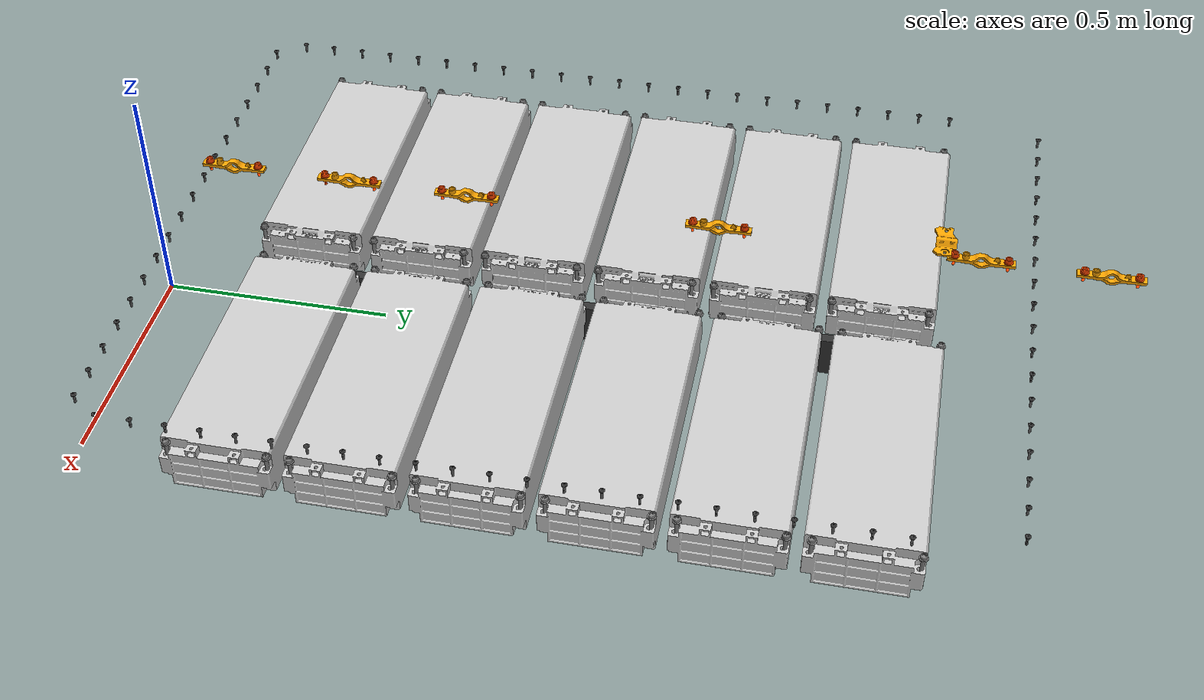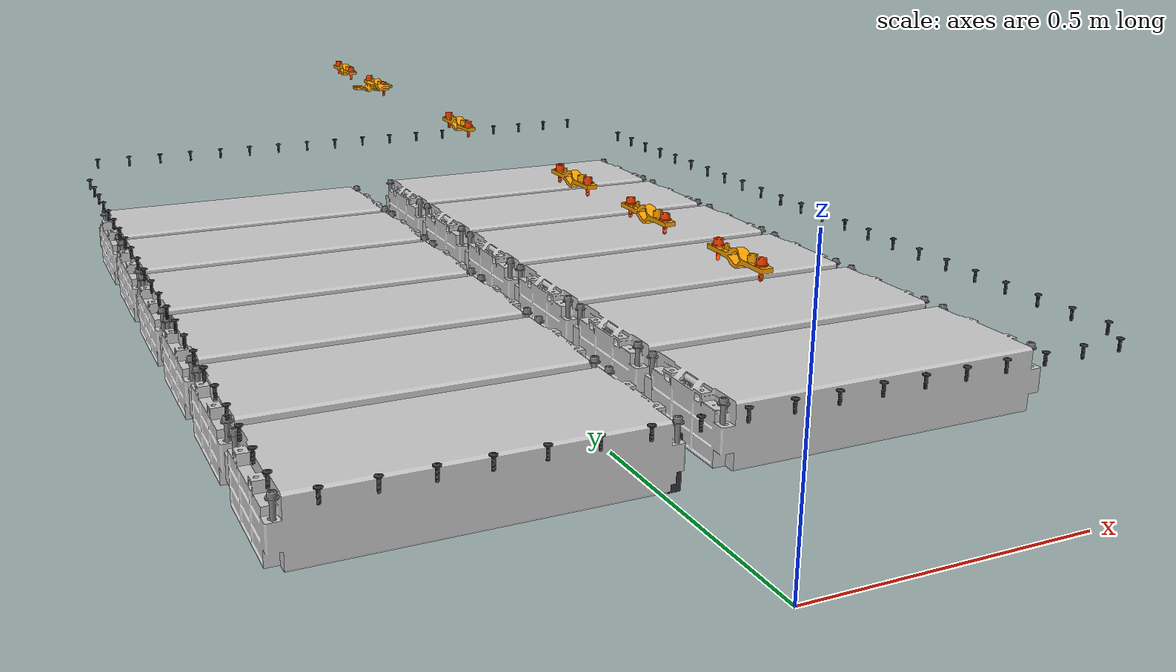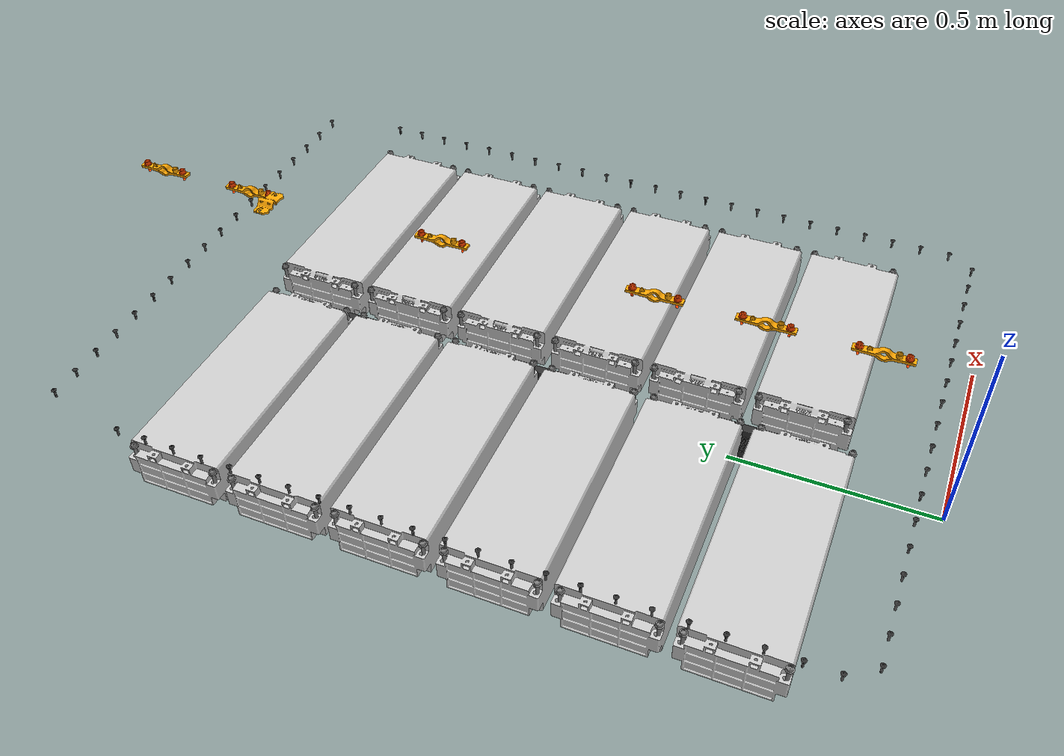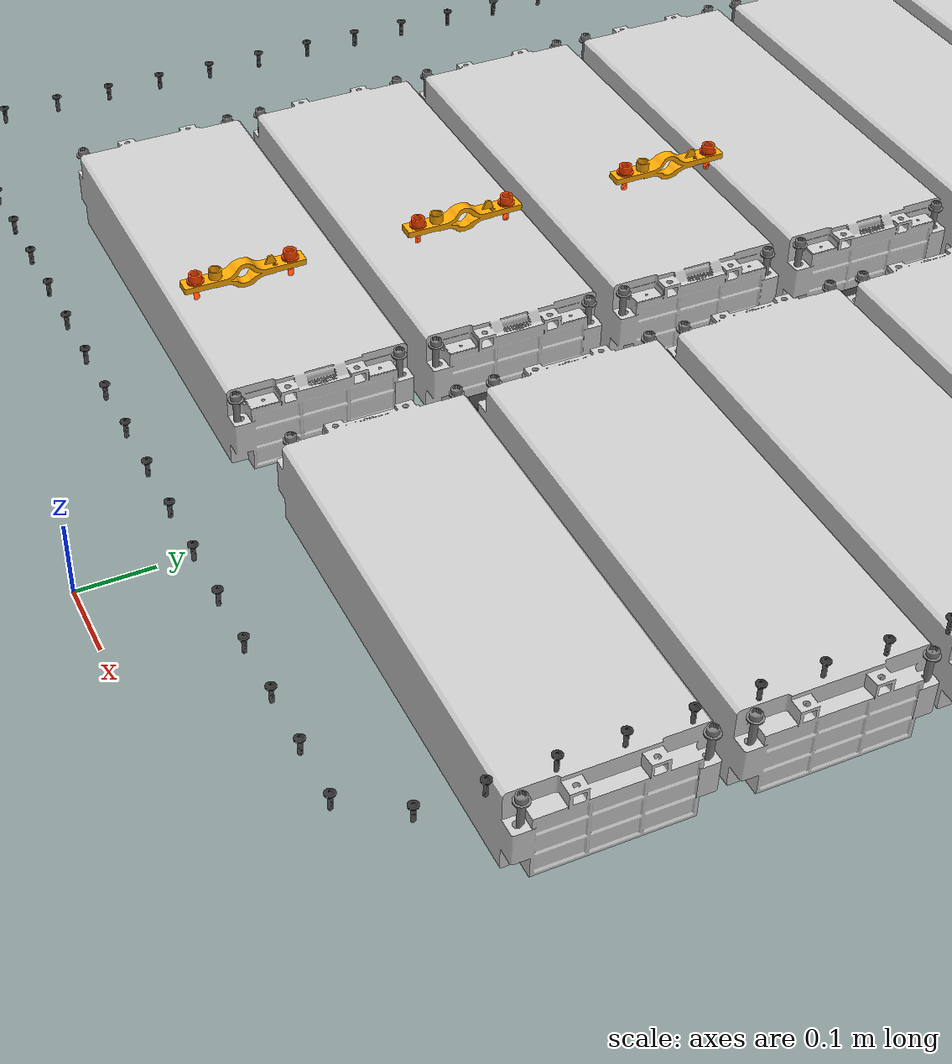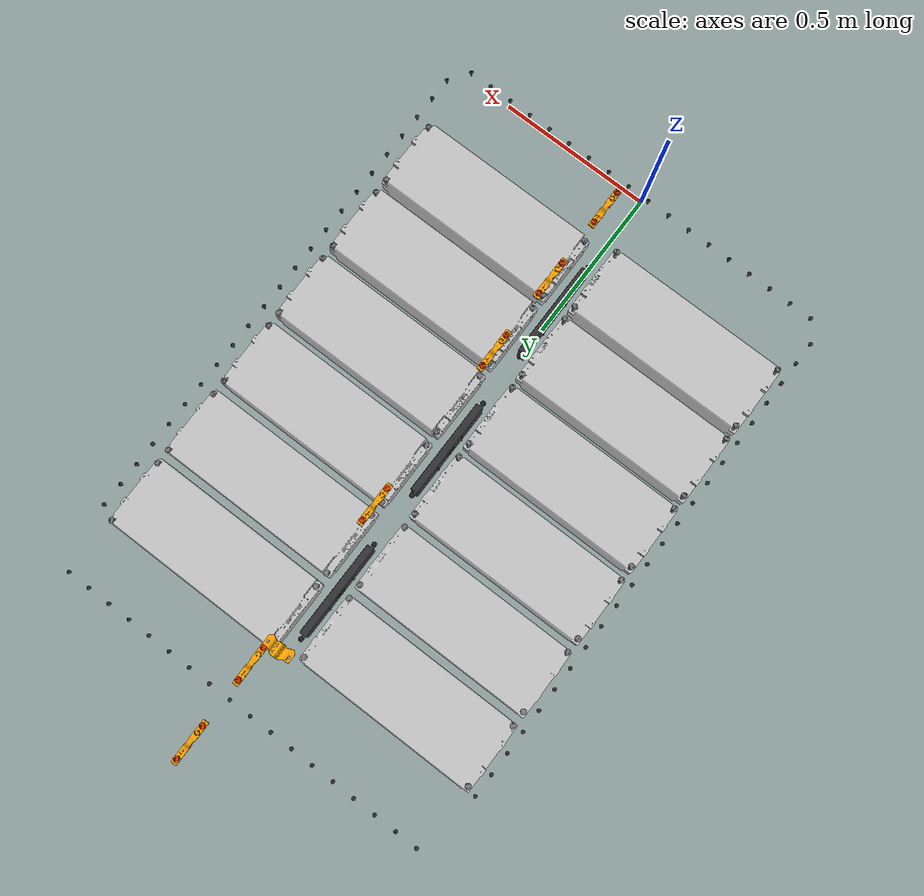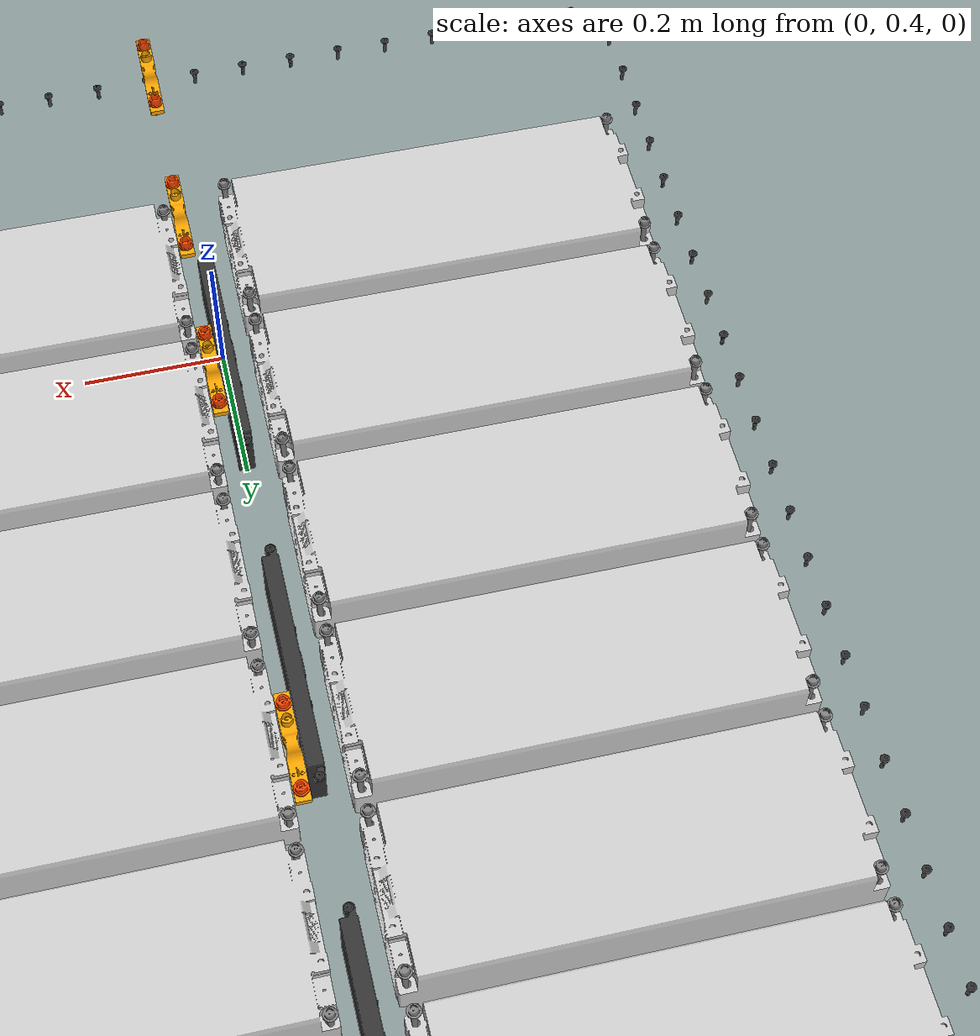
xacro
<?xml version="1.0"?>
<robot xmlns:xacro="http://wiki.ros.org/xacro" name="scene">

  <xacro:include filename="$(find id4_batterypack_description)/urdf/materials.xacro"/>
  <xacro:include filename="$(find id4_batterypack_description)/urdf/module_with_screws.xacro"/>
  <xacro:include filename="$(find id4_batterypack_description)/urdf/busbar_type1.xacro"/>

  <link name="world"/>

  <!-- ================= GLOBAL PARAMETERS ================= -->

  <!-- Module base pose (row A) -->
  <xacro:property name="module_world_x" value="0.0351"/>
  <xacro:property name="module_world_y" value="0.2395"/>
  <xacro:property name="module_world_z" value="0.071"/>
  <xacro:property name="module_pitch"   value="0.249"/>

  <!-- Mirror row (row B): shift in Y 0.202 -->
  <xacro:property name="module_mirror_y" value="0.202"/>

  <!-- BMS base pose -->
  <xacro:property name="bms_world_x" value="-0.003"/>
  <xacro:property name="bms_world_y" value="0.290"/>
  <xacro:property name="bms_world_z" value="0.097"/>
  <xacro:property name="bms_pitch"   value="0.509"/>

  <!-- ================= MACROS ================= -->

  <!-- Generic lens screw (used for BMS + top cover patterns) -->
  <xacro:macro name="screw_lens" params="name parent xyz rpy">
    <link name="${name}">
      <visual>
        <geometry>
          <mesh filename="package://id4_batterypack_description/meshes/lens_flange_m5x25.stl" scale="0.001 0.001 0.001"/>
        </geometry>
        <origin xyz="0 0 0" rpy="0 0 0"/>
        <material name="black"/>
      </visual>
      <collision>
        <geometry>
          <mesh filename="package://id4_batterypack_description/meshes/lens_flange_m5x25.stl" scale="0.001 0.001 0.001"/>
        </geometry>
        <origin xyz="0 0 0" rpy="0 0 0"/>
      </collision>
    </link>

    <joint name="${name}_joint" type="fixed">
      <parent link="${parent}"/>
      <child link="${name}"/>
      <origin xyz="${xyz}" rpy="${rpy}"/>
    </joint>
  </xacro:macro>

  <!-- Screw for BMS (reuse lens screw, fixed rpy=0) -->
  <xacro:macro name="screw_bms" params="name parent xyz">
    <xacro:screw_lens name="${name}" parent="${parent}" xyz="${xyz}" rpy="0 0 0"/>
  </xacro:macro>

  <!-- One BMS instance -->
  <xacro:macro name="bms_instance" params="prefix idx world_x world_y world_z">
    <link name="${prefix}bms_${idx}">
      <visual>
        <geometry>
          <mesh filename="package://id4_batterypack_description/meshes/bms.stl" scale="0.001 0.001 0.001"/>
        </geometry>
        <origin xyz="0 0 0" rpy="0 0 0"/>
        <material name="black"/>
      </visual>
      <collision>
        <geometry>
          <mesh filename="package://id4_batterypack_description/meshes/bms.stl" scale="0.001 0.001 0.001"/>
        </geometry>
        <origin xyz="0 0 0" rpy="0 0 0"/>
      </collision>
    </link>

    <joint name="world_to_${prefix}bms_${idx}" type="fixed">
      <parent link="world"/>
      <child link="${prefix}bms_${idx}"/>
      <origin xyz="${world_x} ${world_y} ${world_z}" rpy="0 0 0"/>
    </joint>

    <xacro:screw_bms name="${prefix}bms_${idx}_s1" parent="${prefix}bms_${idx}" xyz="0 0 0.01"/>
    <xacro:screw_bms name="${prefix}bms_${idx}_s2" parent="${prefix}bms_${idx}" xyz="0 0.334 0.01"/>
  </xacro:macro>

  <!-- ================= PATTERN MACROS ================= -->

  <!-- Row along X: i = 0..n-1 at (x0 + i*dx, y0, z0) -->
  <xacro:macro name="screw_row_x_rec" params="prefix parent i n x0 y0 z0 dx rpy">
    <xacro:if value="${i &lt; n}">
      <xacro:screw_lens name="${prefix}${i}" parent="${parent}"
                        xyz="${x0 + i*dx} ${y0} ${z0}" rpy="${rpy}"/>
      <xacro:screw_row_x_rec prefix="${prefix}" parent="${parent}"
                             i="${i + 1}" n="${n}"
                             x0="${x0}" y0="${y0}" z0="${z0}" dx="${dx}" rpy="${rpy}"/>
    </xacro:if>
  </xacro:macro>

  <xacro:macro name="screw_row_x" params="prefix parent n x0 y0 z0 dx rpy">
    <xacro:screw_row_x_rec prefix="${prefix}" parent="${parent}"
                           i="0" n="${n}" x0="${x0}" y0="${y0}" z0="${z0}" dx="${dx}" rpy="${rpy}"/>
  </xacro:macro>

  <!-- Column along Y: i = 0..n-1 at (x0, y0 + i*dy, z0) -->
  <xacro:macro name="screw_col_y_rec" params="prefix parent i n x0 y0 z0 dy rpy">
    <xacro:if value="${i &lt; n}">
      <xacro:screw_lens name="${prefix}${i}" parent="${parent}"
                        xyz="${x0} ${y0 + i*dy} ${z0}" rpy="${rpy}"/>
      <xacro:screw_col_y_rec prefix="${prefix}" parent="${parent}"
                             i="${i + 1}" n="${n}"
                             x0="${x0}" y0="${y0}" z0="${z0}" dy="${dy}" rpy="${rpy}"/>
    </xacro:if>
  </xacro:macro>

  <xacro:macro name="screw_col_y" params="prefix parent n x0 y0 z0 dy rpy">
    <xacro:screw_col_y_rec prefix="${prefix}" parent="${parent}"
                           i="0" n="${n}" x0="${x0}" y0="${y0}" z0="${z0}" dy="${dy}" rpy="${rpy}"/>
  </xacro:macro>

  <!-- ================= INSTANCES ================= -->
  <xacro:busbar_1_with_screws
    name="busbar1_0"
    parent="world"
    xyz="0.0341 0.216 0.4"
    rpy="0 0 0"/>

  <xacro:busbar_1_with_screws
    name="busbar1_1"
    parent="world"
    xyz="0.0341 ${0.216+0.249} 0.4"
    rpy="0 0 0"/>

  <xacro:busbar_1_with_screws
    name="busbar1_2"
    parent="world"
    xyz="0.0341 ${0.216+2*0.249} 0.4"
    rpy="0 0 0"/>

  <xacro:busbar_1_with_screws
    name="busbar1_3"
    parent="world"
    xyz="0.0341 ${0.216+3*0.249+0.269} 0.4"
    rpy="0 0 0"/>

  <xacro:busbar_1_with_screws
    name="busbar1_4"
    parent="world"
    xyz="0.0341 ${0.216+3*0.249+0.269*2+0.249} 0.4"
    rpy="0 0 0"/>

  <xacro:busbar_1_with_screws
    name="busbar1_5"
    parent="world"
    xyz="0.0341 ${0.216+3*0.249+0.269*2+0.249*2} 0.4"
    rpy="0 0 0"/>

  <!-- 6 modules - row A -->
  <xacro:module_instance prefix="" idx="0"
    world_x="${ module_world_x }"
    world_y="${ module_world_y + 0*module_pitch }"
    world_z="${ module_world_z }"
    world_rpy="0 0 0"/>
  <xacro:module_instance prefix="" idx="1"
    world_x="${ module_world_x }"
    world_y="${ module_world_y + 1*module_pitch }"
    world_z="${ module_world_z }"
    world_rpy="0 0 0"/>
  <xacro:module_instance prefix="" idx="2"
    world_x="${ module_world_x }"
    world_y="${ module_world_y + 2*module_pitch }"
    world_z="${ module_world_z }"
    world_rpy="0 0 0"/>
  <xacro:module_instance prefix="" idx="3"
    world_x="${ module_world_x }"
    world_y="${ module_world_y + 3*module_pitch }"
    world_z="${ module_world_z }"
    world_rpy="0 0 0"/>
  <xacro:module_instance prefix="" idx="4"
    world_x="${ module_world_x }"
    world_y="${ module_world_y + 4*module_pitch }"
    world_z="${ module_world_z }"
    world_rpy="0 0 0"/>
  <xacro:module_instance prefix="" idx="5"
    world_x="${ module_world_x }"
    world_y="${ module_world_y + 5*module_pitch }"
    world_z="${ module_world_z }"
    world_rpy="0 0 0"/>

  <!-- 6 modules - row B (mirrored): x flipped, yaw=pi (xacro provides ${pi}), y shifted -->
  <xacro:module_instance prefix="mir_" idx="0"
    world_x="${ -module_world_x }"
    world_y="${ module_world_y + module_mirror_y + 0*module_pitch }"
    world_z="${ module_world_z }"
    world_rpy="0 0 ${pi}"/>
  <xacro:module_instance prefix="mir_" idx="1"
    world_x="${ -module_world_x }"
    world_y="${ module_world_y + module_mirror_y + 1*module_pitch }"
    world_z="${ module_world_z }"
    world_rpy="0 0 ${pi}"/>
  <xacro:module_instance prefix="mir_" idx="2"
    world_x="${ -module_world_x }"
    world_y="${ module_world_y + module_mirror_y + 2*module_pitch }"
    world_z="${ module_world_z }"
    world_rpy="0 0 ${pi}"/>
  <xacro:module_instance prefix="mir_" idx="3"
    world_x="${ -module_world_x }"
    world_y="${ module_world_y + module_mirror_y + 3*module_pitch }"
    world_z="${ module_world_z }"
    world_rpy="0 0 ${pi}"/>
  <xacro:module_instance prefix="mir_" idx="4"
    world_x="${ -module_world_x }"
    world_y="${ module_world_y + module_mirror_y + 4*module_pitch }"
    world_z="${ module_world_z }"
    world_rpy="0 0 ${pi}"/>
  <xacro:module_instance prefix="mir_" idx="5"
    world_x="${ -module_world_x }"
    world_y="${ module_world_y + module_mirror_y + 5*module_pitch }"
    world_z="${ module_world_z }"
    world_rpy="0 0 ${pi}"/>

  <!-- 3 BMS -->
  <xacro:bms_instance prefix="" idx="0"
    world_x="${ bms_world_x }"
    world_y="${ bms_world_y + 0*bms_pitch }"
    world_z="${ bms_world_z }"/>
  <xacro:bms_instance prefix="" idx="1"
    world_x="${ bms_world_x }"
    world_y="${ bms_world_y + 1*bms_pitch }"
    world_z="${ bms_world_z }"/>
  <xacro:bms_instance prefix="" idx="2"
    world_x="${ bms_world_x }"
    world_y="${ bms_world_y + 2*bms_pitch }"
    world_z="${ bms_world_z }"/>

  <!-- ===== Top cover screws pattern 1: 18 along -X, plus a single copy in +Y (1.8m) ===== -->
  <xacro:screw_row_x prefix="row0_screw_" parent="world"
    n="18" x0="0.595" y0="0.074" z0="0.25" dx="-0.070" rpy="0 0 0"/>

  <xacro:screw_row_x prefix="row1_screw_" parent="world"
    n="18" x0="0.595" y0="${0.074 + 1.8}" z0="0.25" dx="-0.070" rpy="0 0 0"/>

  <!-- ===== Top cover screws pattern 2: 27 along +Y, plus a single mirrored copy in -X by (-0.637*2) ===== -->
  <xacro:screw_col_y prefix="col0_" parent="world"
    n="23" x0="0.637" y0="0.1345" z0="0.25" dy="0.070" rpy="0 0 0"/>

  <xacro:screw_col_y prefix="col1_" parent="world"
    n="23" x0="${0.637 + (-0.637*2)}" y0="0.1345" z0="0.25" dy="0.070" rpy="0 0 0"/>

   <link name="busbar_type3">
      <visual>
        <geometry>
          <mesh filename="package://id4_batterypack_description/meshes/busbar_3.stl" scale="0.001 0.001 0.001"/>
        </geometry>
        <origin xyz="0 0 0" rpy="0 0 0"/>
        <material name="orange"/>
      </visual>
      <collision>
        <geometry>
          <mesh filename="package://id4_batterypack_description/meshes/busbar_3.stl" scale="0.001 0.001 0.001"/>
        </geometry>
        <origin xyz="0 0 0" rpy="0 0 0"/>
      </collision>
    </link>

    <joint name="world_to_busbar_3" type="fixed">
      <parent link="world"/>
      <child link="busbar_type3"/>
      <origin xyz="0 1.7005 0.4" rpy="0 0 ${pi}"/>
    </joint>
</robot>

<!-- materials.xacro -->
<robot xmlns:xacro="http://wiki.ros.org/xacro">

  <material name="black">
     <color rgba="0.2 0.2 0.2 1"/>
  </material>

  <material name="gray">
     <color rgba="0.5 0.5 0.5 1"/>
  </material>

  <material name="light_gray">
    <color rgba="0.8 0.8 0.8 1"/>
  </material>

  <material name="orange">
     <color rgba="1 0.65 0 1"/>
  </material>

  <material name="dark_orange">
    <color rgba="${255/255} ${69/255} ${0/255} 1.0"/>
  </material>
</robot>

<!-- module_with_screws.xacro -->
<robot xmlns:xacro="http://wiki.ros.org/xacro">

  <!-- ===== module mounting screws geometry (relative to module link) ===== -->
  <xacro:property name="module_x0" value="0.011"/>
  <xacro:property name="module_y0" value="0.015"/>
  <xacro:property name="module_z0" value="0.1"/>
  <xacro:property name="module_dx" value="0.5664"/>
  <xacro:property name="module_dy" value="0.202"/>

  <!-- ===== Screw for module ===== -->
  <xacro:macro name="screw_module" params="name parent xyz rpy material:=gray">
    <link name="${name}">
      <visual>
        <geometry>
          <mesh filename="package://id4_batterypack_description/meshes/m8x72_xzn_m10.stl" scale="0.001 0.001 0.001"/>
        </geometry>
        <origin xyz="0 0 0" rpy="0 0 0"/>
        <material name="${material}"/>
      </visual>
      <collision>
        <geometry>
          <mesh filename="package://id4_batterypack_description/meshes/m8x72_xzn_m10.stl" scale="0.001 0.001 0.001"/>
        </geometry>
        <origin xyz="0 0 0" rpy="0 0 0"/>
      </collision>
    </link>

    <joint name="${name}_joint" type="fixed">
      <parent link="${parent}"/>
      <child link="${name}"/>
      <origin xyz="${xyz}" rpy="${rpy}"/>
    </joint>
  </xacro:macro>

  <!-- ===== One module instance + its 4 screws ===== -->
  <xacro:macro name="module_instance" params="prefix idx world_x world_y world_z world_rpy material:=light_gray">
    <link name="${prefix}module_${idx}">
      <visual>
        <geometry>
          <mesh filename="package://id4_batterypack_description/meshes/module.stl" scale="0.001 0.001 0.001"/>
        </geometry>
        <origin xyz="0 0 0" rpy="0 0 0"/>
        <material name="${material}"/>
      </visual>
      <collision>
        <geometry>
          <mesh filename="package://id4_batterypack_description/meshes/module.stl" scale="0.001 0.001 0.001"/>
        </geometry>
        <origin xyz="0 0 0" rpy="0 0 0"/>
      </collision>
    </link>

    <joint name="world_to_${prefix}module_${idx}" type="fixed">
      <parent link="world"/>
      <child link="${prefix}module_${idx}"/>
      <origin xyz="${world_x} ${world_y} ${world_z}" rpy="${world_rpy}"/>
    </joint>

    <!-- 4 screws relative to module -->
    <xacro:screw_module name="${prefix}mod_${idx}_s1" parent="${prefix}module_${idx}"
                        xyz="${module_x0} ${module_y0} ${module_z0}" rpy="0 0 0"/>
    <xacro:screw_module name="${prefix}mod_${idx}_s2" parent="${prefix}module_${idx}"
                        xyz="${module_x0} ${module_y0 + module_dy} ${module_z0}" rpy="0 0 0"/>
    <xacro:screw_module name="${prefix}mod_${idx}_s3" parent="${prefix}module_${idx}"
                        xyz="${module_x0 + module_dx} ${module_y0} ${module_z0}" rpy="0 0 0"/>
    <xacro:screw_module name="${prefix}mod_${idx}_s4" parent="${prefix}module_${idx}"
                        xyz="${module_x0 + module_dx} ${module_y0 + module_dy} ${module_z0}" rpy="0 0 0"/>
  </xacro:macro>

</robot>

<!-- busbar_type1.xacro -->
<robot xmlns:xacro="http://wiki.ros.org/xacro">

  <!--  BUSBAR 1 + 2 M6 screws                               -->

  <xacro:macro name="busbar_1_with_screws"
               params="name parent xyz rpy material_busbar:=orange material_screw:=dark_orange">

    <!-- ================= BUSBAR ================= -->
    <link name="${name}">
      <visual>
        <geometry>
          <mesh filename="package://id4_batterypack_description/meshes/busbar_1_fix.stl"
                scale="1 1 1"/>
        </geometry>
        <origin xyz="0 0 0" rpy="0 0 0"/>
        <material name="${material_busbar}"/>
      </visual>

      <collision>
        <geometry>
          <mesh filename="package://id4_batterypack_description/meshes/busbar_1_fix.stl"
                scale="1 1 1"/>
        </geometry>
        <origin xyz="0 0 0" rpy="0 0 0"/>
      </collision>
    </link>

    <joint name="${name}_joint" type="fixed">
      <parent link="${parent}"/>
      <child link="${name}"/>
      <origin xyz="${xyz}" rpy="${rpy}"/>
    </joint>

    <!-- ================= SCREW - ================= -->
    <link name="${name}_screw_neg">
      <visual>
        <geometry>
          <mesh filename="package://id4_batterypack_description/meshes/m6_1_0x20mm_t30_torx_busbar_rs.stl"
                scale="1 1 1"/>
        </geometry>
        <origin xyz="0 0 0" rpy="0 0 0"/>
        <material name="${material_screw}"/>
      </visual>

      <collision>
        <geometry>
          <mesh filename="package://id4_batterypack_description/meshes/m6_1_0x20mm_t30_torx_busbar_rs.stl"
                scale="1 1 1"/>
        </geometry>
        <origin xyz="0 0 0" rpy="0 0 0"/>
      </collision>
    </link>

    <joint name="${name}_screw_neg_joint" type="fixed">
      <parent link="${name}"/>
      <child link="${name}_screw_neg"/>
      <origin xyz="0 -0.052 0.0015" rpy="0 0 0"/>
    </joint>

    <!-- ================= SCREW + ================= -->
    <link name="${name}_screw_pos">
      <visual>
        <geometry>
          <mesh filename="package://id4_batterypack_description/meshes/m6_1_0x20mm_t30_torx_busbar_rs.stl"
                scale="1 1 1"/>
        </geometry>
        <origin xyz="0 0 0" rpy="0 0 0"/>
        <material name="${material_screw}"/>
      </visual>

      <collision>
        <geometry>
          <mesh filename="package://id4_batterypack_description/meshes/m6_1_0x20mm_t30_torx_busbar_rs.stl"
                scale="1 1 1"/>
        </geometry>
        <origin xyz="0 0 0" rpy="0 0 0"/>
      </collision>
    </link>

    <joint name="${name}_screw_pos_joint" type="fixed">
      <parent link="${name}"/>
      <child link="${name}_screw_pos"/>
      <origin xyz="0 0.052 0.0015" rpy="0 0 0"/>
    </joint>

  </xacro:macro>

</robot>
